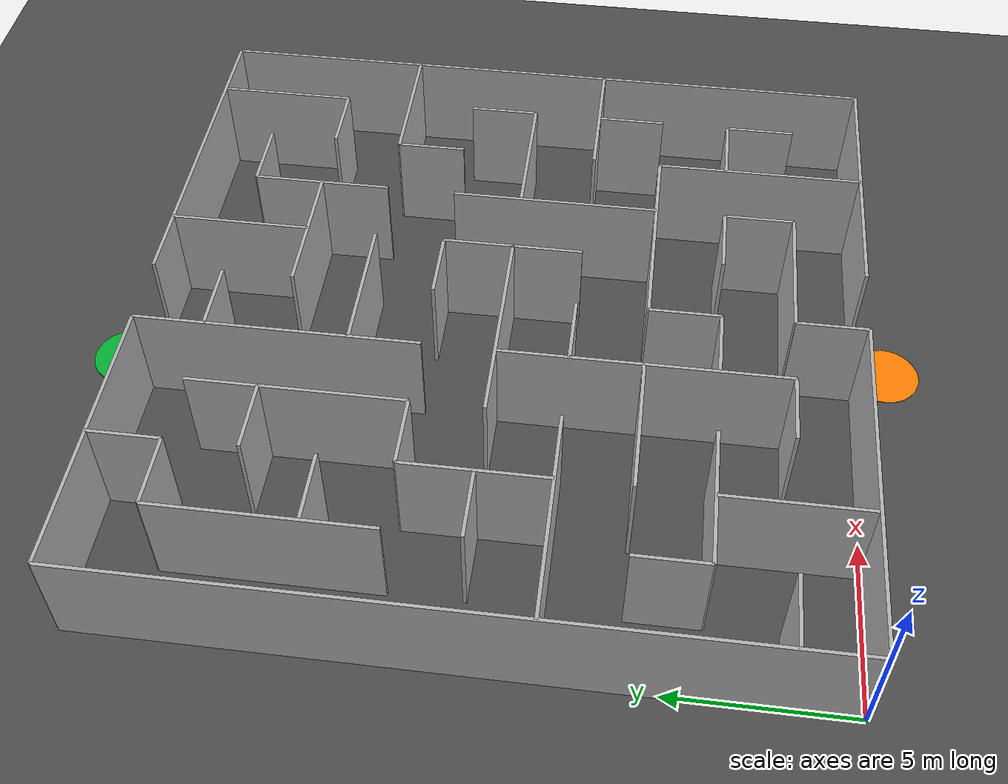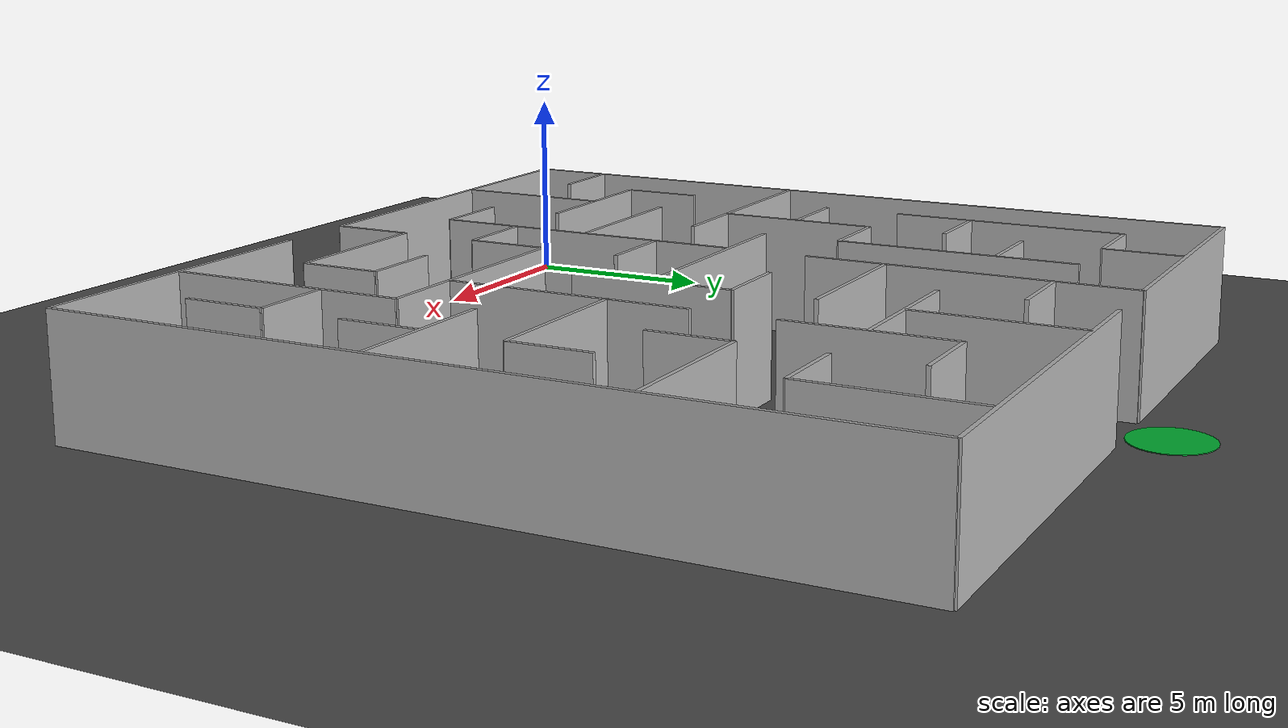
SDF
<sdf version="1.9">
 <world name="maze_10x10">
  <physics name="1ms" type="ignore">
   <max_step_size>0.001</max_step_size>
   <real_time_factor>1.0</real_time_factor>
  </physics>
  <plugin filename="gz-sim-physics-system" name="gz::sim::systems::Physics"/>
  <plugin filename="gz-sim-sensors-system" name="gz::sim::systems::Sensors">
   <render_engine>ogre2</render_engine>
  </plugin>
  <plugin filename="gz-sim-user-commands-system" name="gz::sim::systems::UserCommands"/>
  <plugin filename="gz-sim-scene-broadcaster-system" name="gz::sim::systems::SceneBroadcaster"/>
  <plugin filename="gz-sim-air-pressure-system" name="gz::sim::systems::AirPressure"/>
  <plugin filename="gz-sim-air-speed-system" name="gz::sim::systems::AirSpeed"/>
  <plugin filename="gz-sim-altimeter-system" name="gz::sim::systems::Altimeter"/>
  <plugin filename="gz-sim-imu-system" name="gz::sim::systems::Imu"/>
  <plugin filename="gz-sim-magnetometer-system" name="gz::sim::systems::Magnetometer"/>
  <plugin filename="gz-sim-navsat-system" name="gz::sim::systems::NavSat"/>
  <scene><ambient>1.0 1.0 1.0</ambient><background>0.8 0.8 0.8</background></scene>
  <light type="directional" name="sun">
   <pose>0 0 10 0 0 0</pose>
   <diffuse>0.8 0.8 0.8 1</diffuse>
   <specular>0.8 0.8 0.8 1</specular>
   <attenuation>
    <range>1000</range>
    <constant>0.9</constant>
    <linear>0.01</linear>
    <quadratic>0.001</quadratic>
   </attenuation>
   <direction>-0.5 0.1 -0.9</direction>
  </light>
  <spherical_coordinates>
   <latitude_deg>-35.3632621</latitude_deg>
   <longitude_deg>149.1652374</longitude_deg>
   <elevation>10.0</elevation>
   <heading_deg>0</heading_deg>
   <surface_model>EARTH_WGS84</surface_model>
  </spherical_coordinates>
  <model name="maze_10x10">
   <static>true</static>
   <link name="walls_link">
    <collision name="wall_0_collision">
     <pose>4.000 20.000 1.500 0 0 0</pose>
     <geometry><box><size>8.000 0.100 3.000</size></box></geometry>
    </collision>
    <visual name="wall_0_visual">
     <pose>4.000 20.000 1.500 0 0 0</pose>
     <geometry><box><size>8.000 0.100 3.000</size></box></geometry>
     <material>
      <ambient>0.6 0.6 0.6 1</ambient>
      <diffuse>0.7 0.7 0.7 1</diffuse>
      <specular>0.2 0.2 0.2 1</specular>
     </material>
    </visual>
    <collision name="wall_1_collision">
     <pose>15.000 20.000 1.500 0 0 0</pose>
     <geometry><box><size>10.000 0.100 3.000</size></box></geometry>
    </collision>
    <visual name="wall_1_visual">
     <pose>15.000 20.000 1.500 0 0 0</pose>
     <geometry><box><size>10.000 0.100 3.000</size></box></geometry>
     <material>
      <ambient>0.6 0.6 0.6 1</ambient>
      <diffuse>0.7 0.7 0.7 1</diffuse>
      <specular>0.2 0.2 0.2 1</specular>
     </material>
    </visual>
    <collision name="wall_2_collision">
     <pose>3.000 18.000 1.500 0 0 0</pose>
     <geometry><box><size>2.000 0.100 3.000</size></box></geometry>
    </collision>
    <visual name="wall_2_visual">
     <pose>3.000 18.000 1.500 0 0 0</pose>
     <geometry><box><size>2.000 0.100 3.000</size></box></geometry>
     <material>
      <ambient>0.6 0.6 0.6 1</ambient>
      <diffuse>0.7 0.7 0.7 1</diffuse>
      <specular>0.2 0.2 0.2 1</specular>
     </material>
    </visual>
    <collision name="wall_3_collision">
     <pose>9.000 18.000 1.500 0 0 0</pose>
     <geometry><box><size>2.000 0.100 3.000</size></box></geometry>
    </collision>
    <visual name="wall_3_visual">
     <pose>9.000 18.000 1.500 0 0 0</pose>
     <geometry><box><size>2.000 0.100 3.000</size></box></geometry>
     <material>
      <ambient>0.6 0.6 0.6 1</ambient>
      <diffuse>0.7 0.7 0.7 1</diffuse>
      <specular>0.2 0.2 0.2 1</specular>
     </material>
    </visual>
    <collision name="wall_4_collision">
     <pose>15.000 18.000 1.500 0 0 0</pose>
     <geometry><box><size>2.000 0.100 3.000</size></box></geometry>
    </collision>
    <visual name="wall_4_visual">
     <pose>15.000 18.000 1.500 0 0 0</pose>
     <geometry><box><size>2.000 0.100 3.000</size></box></geometry>
     <material>
      <ambient>0.6 0.6 0.6 1</ambient>
      <diffuse>0.7 0.7 0.7 1</diffuse>
      <specular>0.2 0.2 0.2 1</specular>
     </material>
    </visual>
    <collision name="wall_5_collision">
     <pose>5.000 16.000 1.500 0 0 0</pose>
     <geometry><box><size>2.000 0.100 3.000</size></box></geometry>
    </collision>
    <visual name="wall_5_visual">
     <pose>5.000 16.000 1.500 0 0 0</pose>
     <geometry><box><size>2.000 0.100 3.000</size></box></geometry>
     <material>
      <ambient>0.6 0.6 0.6 1</ambient>
      <diffuse>0.7 0.7 0.7 1</diffuse>
      <specular>0.2 0.2 0.2 1</specular>
     </material>
    </visual>
    <collision name="wall_6_collision">
     <pose>12.000 16.000 1.500 0 0 0</pose>
     <geometry><box><size>4.000 0.100 3.000</size></box></geometry>
    </collision>
    <visual name="wall_6_visual">
     <pose>12.000 16.000 1.500 0 0 0</pose>
     <geometry><box><size>4.000 0.100 3.000</size></box></geometry>
     <material>
      <ambient>0.6 0.6 0.6 1</ambient>
      <diffuse>0.7 0.7 0.7 1</diffuse>
      <specular>0.2 0.2 0.2 1</specular>
     </material>
    </visual>
    <collision name="wall_7_collision">
     <pose>17.000 16.000 1.500 0 0 0</pose>
     <geometry><box><size>2.000 0.100 3.000</size></box></geometry>
    </collision>
    <visual name="wall_7_visual">
     <pose>17.000 16.000 1.500 0 0 0</pose>
     <geometry><box><size>2.000 0.100 3.000</size></box></geometry>
     <material>
      <ambient>0.6 0.6 0.6 1</ambient>
      <diffuse>0.7 0.7 0.7 1</diffuse>
      <specular>0.2 0.2 0.2 1</specular>
     </material>
    </visual>
    <collision name="wall_8_collision">
     <pose>3.000 14.000 1.500 0 0 0</pose>
     <geometry><box><size>2.000 0.100 3.000</size></box></geometry>
    </collision>
    <visual name="wall_8_visual">
     <pose>3.000 14.000 1.500 0 0 0</pose>
     <geometry><box><size>2.000 0.100 3.000</size></box></geometry>
     <material>
      <ambient>0.6 0.6 0.6 1</ambient>
      <diffuse>0.7 0.7 0.7 1</diffuse>
      <specular>0.2 0.2 0.2 1</specular>
     </material>
    </visual>
    <collision name="wall_9_collision">
     <pose>10.000 14.000 1.500 0 0 0</pose>
     <geometry><box><size>4.000 0.100 3.000</size></box></geometry>
    </collision>
    <visual name="wall_9_visual">
     <pose>10.000 14.000 1.500 0 0 0</pose>
     <geometry><box><size>4.000 0.100 3.000</size></box></geometry>
     <material>
      <ambient>0.6 0.6 0.6 1</ambient>
      <diffuse>0.7 0.7 0.7 1</diffuse>
      <specular>0.2 0.2 0.2 1</specular>
     </material>
    </visual>
    <collision name="wall_10_collision">
     <pose>18.000 14.000 1.500 0 0 0</pose>
     <geometry><box><size>4.000 0.100 3.000</size></box></geometry>
    </collision>
    <visual name="wall_10_visual">
     <pose>18.000 14.000 1.500 0 0 0</pose>
     <geometry><box><size>4.000 0.100 3.000</size></box></geometry>
     <material>
      <ambient>0.6 0.6 0.6 1</ambient>
      <diffuse>0.7 0.7 0.7 1</diffuse>
      <specular>0.2 0.2 0.2 1</specular>
     </material>
    </visual>
    <collision name="wall_11_collision">
     <pose>5.000 12.000 1.500 0 0 0</pose>
     <geometry><box><size>2.000 0.100 3.000</size></box></geometry>
    </collision>
    <visual name="wall_11_visual">
     <pose>5.000 12.000 1.500 0 0 0</pose>
     <geometry><box><size>2.000 0.100 3.000</size></box></geometry>
     <material>
      <ambient>0.6 0.6 0.6 1</ambient>
      <diffuse>0.7 0.7 0.7 1</diffuse>
      <specular>0.2 0.2 0.2 1</specular>
     </material>
    </visual>
    <collision name="wall_12_collision">
     <pose>11.000 12.000 1.500 0 0 0</pose>
     <geometry><box><size>2.000 0.100 3.000</size></box></geometry>
    </collision>
    <visual name="wall_12_visual">
     <pose>11.000 12.000 1.500 0 0 0</pose>
     <geometry><box><size>2.000 0.100 3.000</size></box></geometry>
     <material>
      <ambient>0.6 0.6 0.6 1</ambient>
      <diffuse>0.7 0.7 0.7 1</diffuse>
      <specular>0.2 0.2 0.2 1</specular>
     </material>
    </visual>
    <collision name="wall_13_collision">
     <pose>3.000 10.000 1.500 0 0 0</pose>
     <geometry><box><size>2.000 0.100 3.000</size></box></geometry>
    </collision>
    <visual name="wall_13_visual">
     <pose>3.000 10.000 1.500 0 0 0</pose>
     <geometry><box><size>2.000 0.100 3.000</size></box></geometry>
     <material>
      <ambient>0.6 0.6 0.6 1</ambient>
      <diffuse>0.7 0.7 0.7 1</diffuse>
      <specular>0.2 0.2 0.2 1</specular>
     </material>
    </visual>
    <collision name="wall_14_collision">
     <pose>9.000 10.000 1.500 0 0 0</pose>
     <geometry><box><size>6.000 0.100 3.000</size></box></geometry>
    </collision>
    <visual name="wall_14_visual">
     <pose>9.000 10.000 1.500 0 0 0</pose>
     <geometry><box><size>6.000 0.100 3.000</size></box></geometry>
     <material>
      <ambient>0.6 0.6 0.6 1</ambient>
      <diffuse>0.7 0.7 0.7 1</diffuse>
      <specular>0.2 0.2 0.2 1</specular>
     </material>
    </visual>
    <collision name="wall_15_collision">
     <pose>16.000 10.000 1.500 0 0 0</pose>
     <geometry><box><size>4.000 0.100 3.000</size></box></geometry>
    </collision>
    <visual name="wall_15_visual">
     <pose>16.000 10.000 1.500 0 0 0</pose>
     <geometry><box><size>4.000 0.100 3.000</size></box></geometry>
     <material>
      <ambient>0.6 0.6 0.6 1</ambient>
      <diffuse>0.7 0.7 0.7 1</diffuse>
      <specular>0.2 0.2 0.2 1</specular>
     </material>
    </visual>
    <collision name="wall_16_collision">
     <pose>3.000 8.000 1.500 0 0 0</pose>
     <geometry><box><size>6.000 0.100 3.000</size></box></geometry>
    </collision>
    <visual name="wall_16_visual">
     <pose>3.000 8.000 1.500 0 0 0</pose>
     <geometry><box><size>6.000 0.100 3.000</size></box></geometry>
     <material>
      <ambient>0.6 0.6 0.6 1</ambient>
      <diffuse>0.7 0.7 0.7 1</diffuse>
      <specular>0.2 0.2 0.2 1</specular>
     </material>
    </visual>
    <collision name="wall_17_collision">
     <pose>9.000 8.000 1.500 0 0 0</pose>
     <geometry><box><size>2.000 0.100 3.000</size></box></geometry>
    </collision>
    <visual name="wall_17_visual">
     <pose>9.000 8.000 1.500 0 0 0</pose>
     <geometry><box><size>2.000 0.100 3.000</size></box></geometry>
     <material>
      <ambient>0.6 0.6 0.6 1</ambient>
      <diffuse>0.7 0.7 0.7 1</diffuse>
      <specular>0.2 0.2 0.2 1</specular>
     </material>
    </visual>
    <collision name="wall_18_collision">
     <pose>18.000 8.000 1.500 0 0 0</pose>
     <geometry><box><size>4.000 0.100 3.000</size></box></geometry>
    </collision>
    <visual name="wall_18_visual">
     <pose>18.000 8.000 1.500 0 0 0</pose>
     <geometry><box><size>4.000 0.100 3.000</size></box></geometry>
     <material>
      <ambient>0.6 0.6 0.6 1</ambient>
      <diffuse>0.7 0.7 0.7 1</diffuse>
      <specular>0.2 0.2 0.2 1</specular>
     </material>
    </visual>
    <collision name="wall_19_collision">
     <pose>6.000 6.000 1.500 0 0 0</pose>
     <geometry><box><size>4.000 0.100 3.000</size></box></geometry>
    </collision>
    <visual name="wall_19_visual">
     <pose>6.000 6.000 1.500 0 0 0</pose>
     <geometry><box><size>4.000 0.100 3.000</size></box></geometry>
     <material>
      <ambient>0.6 0.6 0.6 1</ambient>
      <diffuse>0.7 0.7 0.7 1</diffuse>
      <specular>0.2 0.2 0.2 1</specular>
     </material>
    </visual>
    <collision name="wall_20_collision">
     <pose>13.000 6.000 1.500 0 0 0</pose>
     <geometry><box><size>6.000 0.100 3.000</size></box></geometry>
    </collision>
    <visual name="wall_20_visual">
     <pose>13.000 6.000 1.500 0 0 0</pose>
     <geometry><box><size>6.000 0.100 3.000</size></box></geometry>
     <material>
      <ambient>0.6 0.6 0.6 1</ambient>
      <diffuse>0.7 0.7 0.7 1</diffuse>
      <specular>0.2 0.2 0.2 1</specular>
     </material>
    </visual>
    <collision name="wall_21_collision">
     <pose>4.000 4.000 1.500 0 0 0</pose>
     <geometry><box><size>4.000 0.100 3.000</size></box></geometry>
    </collision>
    <visual name="wall_21_visual">
     <pose>4.000 4.000 1.500 0 0 0</pose>
     <geometry><box><size>4.000 0.100 3.000</size></box></geometry>
     <material>
      <ambient>0.6 0.6 0.6 1</ambient>
      <diffuse>0.7 0.7 0.7 1</diffuse>
      <specular>0.2 0.2 0.2 1</specular>
     </material>
    </visual>
    <collision name="wall_22_collision">
     <pose>9.000 4.000 1.500 0 0 0</pose>
     <geometry><box><size>2.000 0.100 3.000</size></box></geometry>
    </collision>
    <visual name="wall_22_visual">
     <pose>9.000 4.000 1.500 0 0 0</pose>
     <geometry><box><size>2.000 0.100 3.000</size></box></geometry>
     <material>
      <ambient>0.6 0.6 0.6 1</ambient>
      <diffuse>0.7 0.7 0.7 1</diffuse>
      <specular>0.2 0.2 0.2 1</specular>
     </material>
    </visual>
    <collision name="wall_23_collision">
     <pose>13.000 4.000 1.500 0 0 0</pose>
     <geometry><box><size>2.000 0.100 3.000</size></box></geometry>
    </collision>
    <visual name="wall_23_visual">
     <pose>13.000 4.000 1.500 0 0 0</pose>
     <geometry><box><size>2.000 0.100 3.000</size></box></geometry>
     <material>
      <ambient>0.6 0.6 0.6 1</ambient>
      <diffuse>0.7 0.7 0.7 1</diffuse>
      <specular>0.2 0.2 0.2 1</specular>
     </material>
    </visual>
    <collision name="wall_24_collision">
     <pose>17.000 4.000 1.500 0 0 0</pose>
     <geometry><box><size>2.000 0.100 3.000</size></box></geometry>
    </collision>
    <visual name="wall_24_visual">
     <pose>17.000 4.000 1.500 0 0 0</pose>
     <geometry><box><size>2.000 0.100 3.000</size></box></geometry>
     <material>
      <ambient>0.6 0.6 0.6 1</ambient>
      <diffuse>0.7 0.7 0.7 1</diffuse>
      <specular>0.2 0.2 0.2 1</specular>
     </material>
    </visual>
    <collision name="wall_25_collision">
     <pose>1.000 2.000 1.500 0 0 0</pose>
     <geometry><box><size>2.000 0.100 3.000</size></box></geometry>
    </collision>
    <visual name="wall_25_visual">
     <pose>1.000 2.000 1.500 0 0 0</pose>
     <geometry><box><size>2.000 0.100 3.000</size></box></geometry>
     <material>
      <ambient>0.6 0.6 0.6 1</ambient>
      <diffuse>0.7 0.7 0.7 1</diffuse>
      <specular>0.2 0.2 0.2 1</specular>
     </material>
    </visual>
    <collision name="wall_26_collision">
     <pose>7.000 2.000 1.500 0 0 0</pose>
     <geometry><box><size>2.000 0.100 3.000</size></box></geometry>
    </collision>
    <visual name="wall_26_visual">
     <pose>7.000 2.000 1.500 0 0 0</pose>
     <geometry><box><size>2.000 0.100 3.000</size></box></geometry>
     <material>
      <ambient>0.6 0.6 0.6 1</ambient>
      <diffuse>0.7 0.7 0.7 1</diffuse>
      <specular>0.2 0.2 0.2 1</specular>
     </material>
    </visual>
    <collision name="wall_27_collision">
     <pose>12.000 2.000 1.500 0 0 0</pose>
     <geometry><box><size>4.000 0.100 3.000</size></box></geometry>
    </collision>
    <visual name="wall_27_visual">
     <pose>12.000 2.000 1.500 0 0 0</pose>
     <geometry><box><size>4.000 0.100 3.000</size></box></geometry>
     <material>
      <ambient>0.6 0.6 0.6 1</ambient>
      <diffuse>0.7 0.7 0.7 1</diffuse>
      <specular>0.2 0.2 0.2 1</specular>
     </material>
    </visual>
    <collision name="wall_28_collision">
     <pose>5.000 0.000 1.500 0 0 0</pose>
     <geometry><box><size>10.000 0.100 3.000</size></box></geometry>
    </collision>
    <visual name="wall_28_visual">
     <pose>5.000 0.000 1.500 0 0 0</pose>
     <geometry><box><size>10.000 0.100 3.000</size></box></geometry>
     <material>
      <ambient>0.6 0.6 0.6 1</ambient>
      <diffuse>0.7 0.7 0.7 1</diffuse>
      <specular>0.2 0.2 0.2 1</specular>
     </material>
    </visual>
    <collision name="wall_29_collision">
     <pose>16.000 0.000 1.500 0 0 0</pose>
     <geometry><box><size>8.000 0.100 3.000</size></box></geometry>
    </collision>
    <visual name="wall_29_visual">
     <pose>16.000 0.000 1.500 0 0 0</pose>
     <geometry><box><size>8.000 0.100 3.000</size></box></geometry>
     <material>
      <ambient>0.6 0.6 0.6 1</ambient>
      <diffuse>0.7 0.7 0.7 1</diffuse>
      <specular>0.2 0.2 0.2 1</specular>
     </material>
    </visual>
    <collision name="wall_30_collision">
     <pose>0.000 10.000 1.500 0 0 0</pose>
     <geometry><box><size>0.100 20.000 3.000</size></box></geometry>
    </collision>
    <visual name="wall_30_visual">
     <pose>0.000 10.000 1.500 0 0 0</pose>
     <geometry><box><size>0.100 20.000 3.000</size></box></geometry>
     <material>
      <ambient>0.6 0.6 0.6 1</ambient>
      <diffuse>0.7 0.7 0.7 1</diffuse>
      <specular>0.2 0.2 0.2 1</specular>
     </material>
    </visual>
    <collision name="wall_31_collision">
     <pose>2.000 15.000 1.500 0 0 0</pose>
     <geometry><box><size>0.100 6.000 3.000</size></box></geometry>
    </collision>
    <visual name="wall_31_visual">
     <pose>2.000 15.000 1.500 0 0 0</pose>
     <geometry><box><size>0.100 6.000 3.000</size></box></geometry>
     <material>
      <ambient>0.6 0.6 0.6 1</ambient>
      <diffuse>0.7 0.7 0.7 1</diffuse>
      <specular>0.2 0.2 0.2 1</specular>
     </material>
    </visual>
    <collision name="wall_32_collision">
     <pose>2.000 5.000 1.500 0 0 0</pose>
     <geometry><box><size>0.100 2.000 3.000</size></box></geometry>
    </collision>
    <visual name="wall_32_visual">
     <pose>2.000 5.000 1.500 0 0 0</pose>
     <geometry><box><size>0.100 2.000 3.000</size></box></geometry>
     <material>
      <ambient>0.6 0.6 0.6 1</ambient>
      <diffuse>0.7 0.7 0.7 1</diffuse>
      <specular>0.2 0.2 0.2 1</specular>
     </material>
    </visual>
    <collision name="wall_33_collision">
     <pose>4.000 19.000 1.500 0 0 0</pose>
     <geometry><box><size>0.100 2.000 3.000</size></box></geometry>
    </collision>
    <visual name="wall_33_visual">
     <pose>4.000 19.000 1.500 0 0 0</pose>
     <geometry><box><size>0.100 2.000 3.000</size></box></geometry>
     <material>
      <ambient>0.6 0.6 0.6 1</ambient>
      <diffuse>0.7 0.7 0.7 1</diffuse>
      <specular>0.2 0.2 0.2 1</specular>
     </material>
    </visual>
    <collision name="wall_34_collision">
     <pose>4.000 10.000 1.500 0 0 0</pose>
     <geometry><box><size>0.100 4.000 3.000</size></box></geometry>
    </collision>
    <visual name="wall_34_visual">
     <pose>4.000 10.000 1.500 0 0 0</pose>
     <geometry><box><size>0.100 4.000 3.000</size></box></geometry>
     <material>
      <ambient>0.6 0.6 0.6 1</ambient>
      <diffuse>0.7 0.7 0.7 1</diffuse>
      <specular>0.2 0.2 0.2 1</specular>
     </material>
    </visual>
    <collision name="wall_35_collision">
     <pose>4.000 2.000 1.500 0 0 0</pose>
     <geometry><box><size>0.100 4.000 3.000</size></box></geometry>
    </collision>
    <visual name="wall_35_visual">
     <pose>4.000 2.000 1.500 0 0 0</pose>
     <geometry><box><size>0.100 4.000 3.000</size></box></geometry>
     <material>
      <ambient>0.6 0.6 0.6 1</ambient>
      <diffuse>0.7 0.7 0.7 1</diffuse>
      <specular>0.2 0.2 0.2 1</specular>
     </material>
    </visual>
    <collision name="wall_36_collision">
     <pose>6.000 15.000 1.500 0 0 0</pose>
     <geometry><box><size>0.100 6.000 3.000</size></box></geometry>
    </collision>
    <visual name="wall_36_visual">
     <pose>6.000 15.000 1.500 0 0 0</pose>
     <geometry><box><size>0.100 6.000 3.000</size></box></geometry>
     <material>
      <ambient>0.6 0.6 0.6 1</ambient>
      <diffuse>0.7 0.7 0.7 1</diffuse>
      <specular>0.2 0.2 0.2 1</specular>
     </material>
    </visual>
    <collision name="wall_37_collision">
     <pose>8.000 16.000 1.500 0 0 0</pose>
     <geometry><box><size>0.100 8.000 3.000</size></box></geometry>
    </collision>
    <visual name="wall_37_visual">
     <pose>8.000 16.000 1.500 0 0 0</pose>
     <geometry><box><size>0.100 8.000 3.000</size></box></geometry>
     <material>
      <ambient>0.6 0.6 0.6 1</ambient>
      <diffuse>0.7 0.7 0.7 1</diffuse>
      <specular>0.2 0.2 0.2 1</specular>
     </material>
    </visual>
    <collision name="wall_38_collision">
     <pose>8.000 6.000 1.500 0 0 0</pose>
     <geometry><box><size>0.100 8.000 3.000</size></box></geometry>
    </collision>
    <visual name="wall_38_visual">
     <pose>8.000 6.000 1.500 0 0 0</pose>
     <geometry><box><size>0.100 8.000 3.000</size></box></geometry>
     <material>
      <ambient>0.6 0.6 0.6 1</ambient>
      <diffuse>0.7 0.7 0.7 1</diffuse>
      <specular>0.2 0.2 0.2 1</specular>
     </material>
    </visual>
    <collision name="wall_39_collision">
     <pose>10.000 5.000 1.500 0 0 0</pose>
     <geometry><box><size>0.100 2.000 3.000</size></box></geometry>
    </collision>
    <visual name="wall_39_visual">
     <pose>10.000 5.000 1.500 0 0 0</pose>
     <geometry><box><size>0.100 2.000 3.000</size></box></geometry>
     <material>
      <ambient>0.6 0.6 0.6 1</ambient>
      <diffuse>0.7 0.7 0.7 1</diffuse>
      <specular>0.2 0.2 0.2 1</specular>
     </material>
    </visual>
    <collision name="wall_40_collision">
     <pose>10.000 1.000 1.500 0 0 0</pose>
     <geometry><box><size>0.100 2.000 3.000</size></box></geometry>
    </collision>
    <visual name="wall_40_visual">
     <pose>10.000 1.000 1.500 0 0 0</pose>
     <geometry><box><size>0.100 2.000 3.000</size></box></geometry>
     <material>
      <ambient>0.6 0.6 0.6 1</ambient>
      <diffuse>0.7 0.7 0.7 1</diffuse>
      <specular>0.2 0.2 0.2 1</specular>
     </material>
    </visual>
    <collision name="wall_41_collision">
     <pose>12.000 18.000 1.500 0 0 0</pose>
     <geometry><box><size>0.100 4.000 3.000</size></box></geometry>
    </collision>
    <visual name="wall_41_visual">
     <pose>12.000 18.000 1.500 0 0 0</pose>
     <geometry><box><size>0.100 4.000 3.000</size></box></geometry>
     <material>
      <ambient>0.6 0.6 0.6 1</ambient>
      <diffuse>0.7 0.7 0.7 1</diffuse>
      <specular>0.2 0.2 0.2 1</specular>
     </material>
    </visual>
    <collision name="wall_42_collision">
     <pose>12.000 10.000 1.500 0 0 0</pose>
     <geometry><box><size>0.100 4.000 3.000</size></box></geometry>
    </collision>
    <visual name="wall_42_visual">
     <pose>12.000 10.000 1.500 0 0 0</pose>
     <geometry><box><size>0.100 4.000 3.000</size></box></geometry>
     <material>
      <ambient>0.6 0.6 0.6 1</ambient>
      <diffuse>0.7 0.7 0.7 1</diffuse>
      <specular>0.2 0.2 0.2 1</specular>
     </material>
    </visual>
    <collision name="wall_43_collision">
     <pose>14.000 16.000 1.500 0 0 0</pose>
     <geometry><box><size>0.100 4.000 3.000</size></box></geometry>
    </collision>
    <visual name="wall_43_visual">
     <pose>14.000 16.000 1.500 0 0 0</pose>
     <geometry><box><size>0.100 4.000 3.000</size></box></geometry>
     <material>
      <ambient>0.6 0.6 0.6 1</ambient>
      <diffuse>0.7 0.7 0.7 1</diffuse>
      <specular>0.2 0.2 0.2 1</specular>
     </material>
    </visual>
    <collision name="wall_44_collision">
     <pose>14.000 9.000 1.500 0 0 0</pose>
     <geometry><box><size>0.100 6.000 3.000</size></box></geometry>
    </collision>
    <visual name="wall_44_visual">
     <pose>14.000 9.000 1.500 0 0 0</pose>
     <geometry><box><size>0.100 6.000 3.000</size></box></geometry>
     <material>
      <ambient>0.6 0.6 0.6 1</ambient>
      <diffuse>0.7 0.7 0.7 1</diffuse>
      <specular>0.2 0.2 0.2 1</specular>
     </material>
    </visual>
    <collision name="wall_45_collision">
     <pose>14.000 3.000 1.500 0 0 0</pose>
     <geometry><box><size>0.100 2.000 3.000</size></box></geometry>
    </collision>
    <visual name="wall_45_visual">
     <pose>14.000 3.000 1.500 0 0 0</pose>
     <geometry><box><size>0.100 2.000 3.000</size></box></geometry>
     <material>
      <ambient>0.6 0.6 0.6 1</ambient>
      <diffuse>0.7 0.7 0.7 1</diffuse>
      <specular>0.2 0.2 0.2 1</specular>
     </material>
    </visual>
    <collision name="wall_46_collision">
     <pose>16.000 13.000 1.500 0 0 0</pose>
     <geometry><box><size>0.100 2.000 3.000</size></box></geometry>
    </collision>
    <visual name="wall_46_visual">
     <pose>16.000 13.000 1.500 0 0 0</pose>
     <geometry><box><size>0.100 2.000 3.000</size></box></geometry>
     <material>
      <ambient>0.6 0.6 0.6 1</ambient>
      <diffuse>0.7 0.7 0.7 1</diffuse>
      <specular>0.2 0.2 0.2 1</specular>
     </material>
    </visual>
    <collision name="wall_47_collision">
     <pose>16.000 3.000 1.500 0 0 0</pose>
     <geometry><box><size>0.100 6.000 3.000</size></box></geometry>
    </collision>
    <visual name="wall_47_visual">
     <pose>16.000 3.000 1.500 0 0 0</pose>
     <geometry><box><size>0.100 6.000 3.000</size></box></geometry>
     <material>
      <ambient>0.6 0.6 0.6 1</ambient>
      <diffuse>0.7 0.7 0.7 1</diffuse>
      <specular>0.2 0.2 0.2 1</specular>
     </material>
    </visual>
    <collision name="wall_48_collision">
     <pose>18.000 18.000 1.500 0 0 0</pose>
     <geometry><box><size>0.100 4.000 3.000</size></box></geometry>
    </collision>
    <visual name="wall_48_visual">
     <pose>18.000 18.000 1.500 0 0 0</pose>
     <geometry><box><size>0.100 4.000 3.000</size></box></geometry>
     <material>
      <ambient>0.6 0.6 0.6 1</ambient>
      <diffuse>0.7 0.7 0.7 1</diffuse>
      <specular>0.2 0.2 0.2 1</specular>
     </material>
    </visual>
    <collision name="wall_49_collision">
     <pose>18.000 11.000 1.500 0 0 0</pose>
     <geometry><box><size>0.100 2.000 3.000</size></box></geometry>
    </collision>
    <visual name="wall_49_visual">
     <pose>18.000 11.000 1.500 0 0 0</pose>
     <geometry><box><size>0.100 2.000 3.000</size></box></geometry>
     <material>
      <ambient>0.6 0.6 0.6 1</ambient>
      <diffuse>0.7 0.7 0.7 1</diffuse>
      <specular>0.2 0.2 0.2 1</specular>
     </material>
    </visual>
    <collision name="wall_50_collision">
     <pose>18.000 7.000 1.500 0 0 0</pose>
     <geometry><box><size>0.100 2.000 3.000</size></box></geometry>
    </collision>
    <visual name="wall_50_visual">
     <pose>18.000 7.000 1.500 0 0 0</pose>
     <geometry><box><size>0.100 2.000 3.000</size></box></geometry>
     <material>
      <ambient>0.6 0.6 0.6 1</ambient>
      <diffuse>0.7 0.7 0.7 1</diffuse>
      <specular>0.2 0.2 0.2 1</specular>
     </material>
    </visual>
    <collision name="wall_51_collision">
     <pose>18.000 3.000 1.500 0 0 0</pose>
     <geometry><box><size>0.100 2.000 3.000</size></box></geometry>
    </collision>
    <visual name="wall_51_visual">
     <pose>18.000 3.000 1.500 0 0 0</pose>
     <geometry><box><size>0.100 2.000 3.000</size></box></geometry>
     <material>
      <ambient>0.6 0.6 0.6 1</ambient>
      <diffuse>0.7 0.7 0.7 1</diffuse>
      <specular>0.2 0.2 0.2 1</specular>
     </material>
    </visual>
    <collision name="wall_52_collision">
     <pose>20.000 10.000 1.500 0 0 0</pose>
     <geometry><box><size>0.100 20.000 3.000</size></box></geometry>
    </collision>
    <visual name="wall_52_visual">
     <pose>20.000 10.000 1.500 0 0 0</pose>
     <geometry><box><size>0.100 20.000 3.000</size></box></geometry>
     <material>
      <ambient>0.6 0.6 0.6 1</ambient>
      <diffuse>0.7 0.7 0.7 1</diffuse>
      <specular>0.2 0.2 0.2 1</specular>
     </material>
    </visual>
   </link>
  </model>
  <model name="floor">
   <static>true</static>
   <link name="link">
    <collision name="collision">
     <geometry><plane><normal>0 0 1</normal><size>100 100</size></plane></geometry>
     <surface><friction><ode><mu>100</mu><mu2>50</mu2></ode></friction></surface>
    </collision>
    <visual name="visual">
     <cast_shadows>false</cast_shadows>
     <geometry><plane><normal>0 0 1</normal><size>100 100</size></plane></geometry>
     <material><diffuse>0.3 0.3 0.3 1</diffuse></material>
    </visual>
   </link>
  </model>
  <model name="landing_pad_1">
   <static>true</static>
   <pose>11 -1 0.01 0 0 0</pose>
   <link name="link">
    <collision name="collision">
     <geometry><cylinder><radius>1.0</radius><length>0.02</length></cylinder></geometry>
    </collision>
    <visual name="visual">
     <geometry><cylinder><radius>1.0</radius><length>0.02</length></cylinder></geometry>
     <material>
      <ambient>1.0 0.5 0.0 1.0</ambient>
      <diffuse>1.0 0.5 0.0 1.0</diffuse>
      <specular>0.2 0.2 0.2 1.0</specular>
     </material>
    </visual>
   </link>
  </model>
  <model name="landing_pad_2">
   <static>true</static>
   <pose>9 21 0.01 0 0 0</pose>
   <link name="link">
    <collision name="collision">
     <geometry><cylinder><radius>1.0</radius><length>0.02</length></cylinder></geometry>
    </collision>
    <visual name="visual">
     <geometry><cylinder><radius>1.0</radius><length>0.02</length></cylinder></geometry>
     <material>
      <ambient>0.0 0.7 0.2 1.0</ambient>
      <diffuse>0.0 0.7 0.2 1.0</diffuse>
      <specular>0.2 0.2 0.2 1.0</specular>
     </material>
    </visual>
   </link>
  </model>
 </world>
</sdf>
